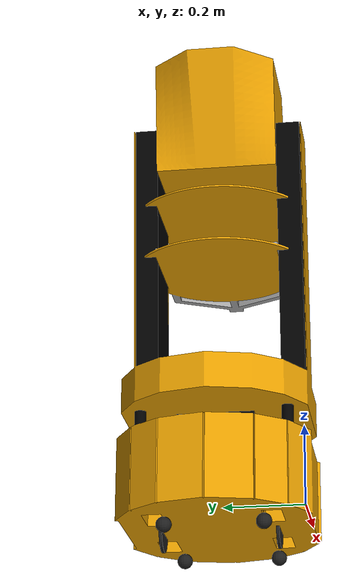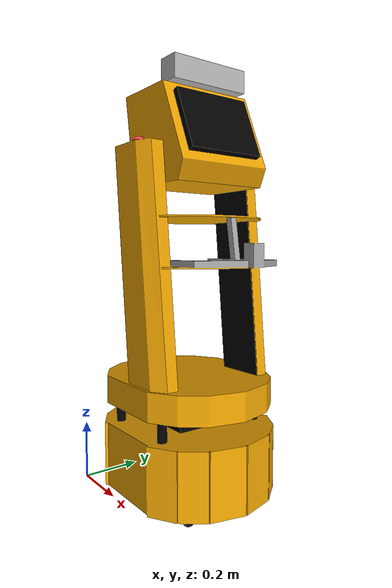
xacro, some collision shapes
<?xml version="1.0"?>
<robot name="guiabot"
  xmlns:xacro="http://ros.org/wiki/xacro">

 <xacro:property name="inertia" value="1" />
 <xacro:property name="M_PI" value="3.1415926535897931" />

<gazebo>
  <plugin name="gazebo_ros_control" filename="libgazebo_ros_control.so">
    <robotNamespace>/guiabot</robotNamespace>
<robotSimType>gazebo_ros_control/DefaultRobotHWSim</robotSimType>
  </plugin>
</gazebo>

<link name="base_link" >

    <visual>
      <origin xyz="0 0 0.024" rpy="0 0 0"/>
      <geometry>
        <mesh filename="package://guiabot_description/meshes/guiabot.dae" scale="1 1 1"/>
      </geometry>
    </visual>
    <collision>
      <geometry>
        <mesh filename="package://guiabot_description/meshes/guiabot.dae" scale="1 1 1"/>
      </geometry>
    </collision>
  </link>

<link name="left_diff_wheel">
    <inertial>
      <mass value="50"/>
      <!--origin xyz="0 0 -0.0525" rpy="0 0 0"/-->
      <origin rpy="0 0 0" xyz="0 0 0"/>
      <inertia ixx="1" ixy="0" ixz="0" iyy="1" iyz="0" izz="1"/>
    </inertial>
    <visual>
      <origin xyz="0 0 0" rpy="0 0 0"/>
      <geometry>
        <cylinder length="0.008" radius="0.046"/>
      </geometry>
    </visual>
    <collision>
      <origin xyz="0 0 0" rpy="0 0 0"/>
      <geometry>
        <cylinder length="0.008" radius="0.046"/>
      </geometry>
    </collision>
  </link>

  <joint name="left_diff_wheel_base"  type="continuous">
    <axis xyz="0 0 -1"/>
    <parent link="base_link"/>
    <child link="left_diff_wheel"/>
    <origin xyz=".295 .095  0.024" rpy="1.5708 0 0"/>
  </joint>
  <gazebo reference="left_diff_wheel">
    <material>Gazebo/Black</material>
    <turnGravityOff>false</turnGravityOff>
  </gazebo>

  <link name="right_diff_wheel">
    <inertial>
      <mass value="50"/>
      <!--origin xyz="0 0 -0.0525" rpy="0 0 0"/-->
      <origin rpy="0 0 0" xyz="0 0 0.0"/>
      <inertia ixx="1" ixy="0" ixz="0" iyy="1" iyz="0" izz="1"/>
    </inertial>
    <visual>
      <origin xyz="0 0 0" rpy="0 0 0"/>
      <geometry>
        <cylinder length="0.008" radius="0.046"/>
      </geometry>
    </visual>
    <collision>
      <origin xyz="0 0 0" rpy="0 0 0"/>
      <geometry>
        <cylinder length="0.008" radius="0.046"/>
      </geometry>
    </collision>
  </link>

  <joint name="right_diff_wheel_base"  type="continuous">
    <axis xyz="0 0 -1"/>
   <parent link="base_link"/>
    <child link="right_diff_wheel"/>
    <origin xyz=".295 .395  0.024" rpy="-1.5708 0 0"/>
  </joint>

    <gazebo reference="right_diff_wheel">
    <material>Gazebo/Black</material>
    <turnGravityOff>false</turnGravityOff>
  </gazebo>

  <link name="stabilising_wheel_1">
    <inertial>
      <mass value="1"/>
      <!--origin xyz="0 0 -0.0525" rpy="0 0 0"/-->
      <origin rpy="0 0 0" xyz="0 0 0.0"/>
      <inertia ixx="1" ixy="0" ixz="0" iyy="1" iyz="0" izz="1"/>
    </inertial>
    <visual>
      <origin xyz="0 0 0" rpy="0 0 0"/>
      <geometry>
        <sphere radius="0.020"/>
      </geometry>
    </visual>
    <collision>
      <origin xyz="0 0 0" rpy="0 0 0"/>
      <geometry>
        <sphere radius="0.020"/>
      </geometry>
    </collision>
  </link>

  <joint name="stabilising_wheel_base_1" type="continuous">
    <parent link="base_link"/>
    <child link="stabilising_wheel_1"/>
    <origin xyz="0.120 .115 0" rpy="-1.5708 0 0"/>
  </joint>

  <gazebo reference="stabilising_wheel_1">
    <material>Gazebo/Black</material>
    <turnGravityOff>false</turnGravityOff>
  </gazebo>

  <link name="stabilising_wheel_2">
    <inertial>
      <mass value="1"/>
      <!--origin xyz="0 0 -0.0525" rpy="0 0 0"/-->
      <origin rpy="0 0 0" xyz="0 0 0.0"/>
      <inertia ixx="1" ixy="0" ixz="0" iyy="1" iyz="0" izz="1"/>
    </inertial>
    <visual>
      <origin xyz="0 0 0" rpy="0 0 0"/>
      <geometry>
        <sphere radius="0.020"/>
      </geometry>
    </visual>
    <collision>
      <origin xyz="0 0 0" rpy="0 0 0"/>
      <geometry>
        <sphere radius="0.020"/>
      </geometry>
    </collision>
  </link>

  <joint name="stabilising_wheel_base_2" type="continuous">
    <axis xyz="1 1 1"/>
    <parent link="base_link"/>
    <child link="stabilising_wheel_2"/>
    <origin xyz="0.120 .365 0" rpy="-1.5708 0 0"/>
  </joint>

  <gazebo reference="stabilising_wheel_2">
    <material>Gazebo/Black</material>
    <turnGravityOff>false</turnGravityOff>
  </gazebo>

  <link name="stabilising_wheel_3">
    <inertial>
      <mass value="1"/>
      <!--origin xyz="0 0 -0.0525" rpy="0 0 0"/-->
      <origin rpy="0 0 0" xyz="0 0 0.0"/>
      <inertia ixx="1" ixy="0" ixz="0" iyy="1" iyz="0" izz="1"/>
    </inertial>
    <visual>
      <origin xyz="0 0 0" rpy="0 0 0"/>
      <geometry>
       <sphere radius="0.020"/>
      </geometry>
    </visual>
    <collision>
      <origin xyz="0 0 0" rpy="0 0 0"/>
      <geometry>
       <sphere radius="0.020"/>
      </geometry>
    </collision>
  </link>

  <joint name="stabilising_wheel_base_3" type="continuous">
    <axis xyz="1 1 1"/>
    <parent link="base_link"/>
    <child link="stabilising_wheel_3"/>
    <origin xyz="0.470 .115 0" rpy="-1.5708 0 0"/>
  </joint>

  <gazebo reference="stabilising_wheel_3">
    <material>Gazebo/Black</material>
    <turnGravityOff>false</turnGravityOff>
  </gazebo>

  <link name="stabilising_wheel_4">
    <inertial>
      <mass value="1"/>
      <!--origin xyz="0 0 -0.0525" rpy="0 0 0"/-->
      <origin rpy="0 0 0" xyz="0 0 0.0"/>
      <inertia ixx="1" ixy="0" ixz="0" iyy="1" iyz="0" izz="1"/>
    </inertial>
    <visual>
      <origin xyz="0 0 0" rpy="0 0 0"/>
      <geometry>
        <sphere radius="0.020"/>
      </geometry>
    </visual>
    <collision>
      <origin xyz="0 0 0" rpy="0 0 0"/>
      <geometry>
        <sphere radius="0.020"/>
      </geometry>
    </collision>
  </link>

  <joint name="stabilising_wheel_base_4" type="continuous">
    <axis xyz="1 1 1"/>
    <parent link="base_link"/>
    <child link="stabilising_wheel_4"/>
    <origin xyz="0.470 .365 0" rpy="-1.5708 0 0"/>
  </joint>

  <gazebo reference="stabilising_wheel_4">
    <material>Gazebo/Black</material>
    <turnGravityOff>false</turnGravityOff>
  </gazebo>

  <gazebo>
    <plugin name="object_controller" filename="libgazebo_ros_planar_move.so">
      <commandTopic>cmd_vel</commandTopic>
      <odometryTopic>odom</odometryTopic>
      <odometryFrame>odom</odometryFrame>
      <odometryRate>20.0</odometryRate>
      <robotBaseFrame>base_link</robotBaseFrame>
    </plugin>
  </gazebo>

<!-- SENSOR -->
   <gazebo reference="simple_collision_link">
      <selfCollide>false</selfCollide>
      <sensor type="contact" name="simple_collision_sensor">
        <always_on>true</always_on>
        <update_rate>100.0</update_rate>
        <contact>
          <collision>segbot_simple_collision</collision>
          <topic>simple_contact</topic>
        </contact>
        <plugin name="simple_collision_gazebo_ros_bumper_controller" filename="libgazebo_ros_bumper.so">
          <alwaysOn>true</alwaysOn>
          <updateRate>100</updateRate>
          <frameName>base_link</frameName>
          <bumperTopicName>simple_collision_bumper</bumperTopicName>
        </plugin>
      </sensor>
    </gazebo>

<gazebo reference="camera_link">
    <sensor type="depth" name="openni_camera_camera">
        <always_on>1</always_on>
        <visualize>true</visualize>
        <camera>
            <horizontal_fov>1.047</horizontal_fov>
            <image>
                <width>640</width>
                <height>480</height>
                <format>R8G8B8</format>
            </image>
            <depth_camera>

            </depth_camera>
            <clip>
                <near>0.1</near>
                <far>100</far>
            </clip>
        </camera>
        <plugin name="camera_controller" filename="libgazebo_ros_openni_kinect.so">
            <alwaysOn>true</alwaysOn>
                <updateRate>50.0</updateRate>
                <cameraName>camera</cameraName>
                <frameName>openni_camera_link</frameName>
            <imageTopicName>rgb/image_raw</imageTopicName>
            <depthImageTopicName>depth/image_raw</depthImageTopicName>
            <pointCloudTopicName>depth/points</pointCloudTopicName>
            <cameraInfoTopicName>rgb/camera_info</cameraInfoTopicName>
            <depthImageCameraInfoTopicName>depth/camera_info</depthImageCameraInfoTopicName>
            <pointCloudCutoff>0.4</pointCloudCutoff>
                <hackBaseline>0.07</hackBaseline>
                <distortionK1>0.0</distortionK1>
                <distortionK2>0.0</distortionK2>
                <distortionK3>0.0</distortionK3>
                <distortionT1>0.0</distortionT1>
                <distortionT2>0.0</distortionT2>
            <CxPrime>0.0</CxPrime>
            <Cx>0.0</Cx>
            <Cy>0.0</Cy>
            <focalLength>0.0</focalLength>
            </plugin>
    </sensor>
</gazebo>

<joint name="base_camera_joint" type="fixed">
			<origin xyz="0.37 0.25 1.37" rpy="0 0 0" />
			<parent link="base_link" />
			<child link="camera_link" />
		</joint>

		<link name="camera_link">
			<inertial>
				<mass value="0.01" />
				<origin xyz="0 0 0" />
				<inertia ixx="0.001" ixy="0.0" ixz="0.0" iyy="0.001" iyz="0.0" izz="0.001" />
			</inertial>

			<visual>
				<origin xyz=" 0 0 0 " rpy="0 0 0" />
				<geometry>
					<mesh filename="package://guiabot_description/meshes/kinect.dae"/>
				</geometry>
			</visual>

			<collision>
				<origin xyz="0.0 0.0 0.0" rpy="0 0 0" />
				<geometry>
					<box size="0.0730 .2760 0.0720"/>
				</geometry>
			</collision>
		</link>

		<joint name="camera_depth_joint" type="fixed">
			<origin xyz="0 0.018 0" rpy="0 0 0" />
			<parent link="camera_link" />
			<child link="camera_depth_frame" />
		</joint>

		<link name="camera_depth_frame">
			<inertial>
				<mass value="0.01" />
				<origin xyz="0 0 0" />
				<inertia ixx="0.001" ixy="0.0" ixz="0.0" iyy="0.001" iyz="0.0" izz="0.001" />
			</inertial>
		</link>

		<joint name="camera_depth_optical_joint" type="fixed">
			<origin xyz="0 0 0" rpy="${-M_PI/2} 0 ${-M_PI/2}" />
			<parent link="camera_depth_frame" />
			<child link="camera_depth_optical_frame" />
		</joint>

		<link name="camera_depth_optical_frame">
			<inertial>
				<mass value="0.001" />
				<origin xyz="0 0 0" />
				<inertia ixx="0.0001" ixy="0.0" ixz="0.0" iyy="0.0001" iyz="0.0" izz="0.0001" />
			</inertial>
		</link>

		<joint name="camera_rgb_joint" type="fixed">
			<origin xyz="0 -0.005 0" rpy="0 0 0" />
			<parent link="camera_link" />
			<child link="camera_rgb_frame" />
		</joint>

		<link name="camera_rgb_frame">
			<inertial>
				<mass value="0.001" />
				<origin xyz="0 0 0" />
				<inertia ixx="0.0001" ixy="0.0" ixz="0.0" iyy="0.0001" iyz="0.0" izz="0.0001" />
			</inertial>
		</link>

		<joint name="camera_rgb_optical_joint" type="fixed">
			<origin xyz="0 0 0" rpy="${-M_PI/2} 0 ${-M_PI/2}" />
			<parent link="camera_rgb_frame" />
			<child link="camera_rgb_optical_frame" />
		</joint>

		<link name="camera_rgb_optical_frame">
			<inertial>
				<mass value="0.001" />
				<origin xyz="0 0 0" />
				<inertia ixx="0.0001" ixy="0.0" ixz="0.0" iyy="0.0001" iyz="0.0" izz="0.0001" />
			</inertial>
		</link>

</robot>
